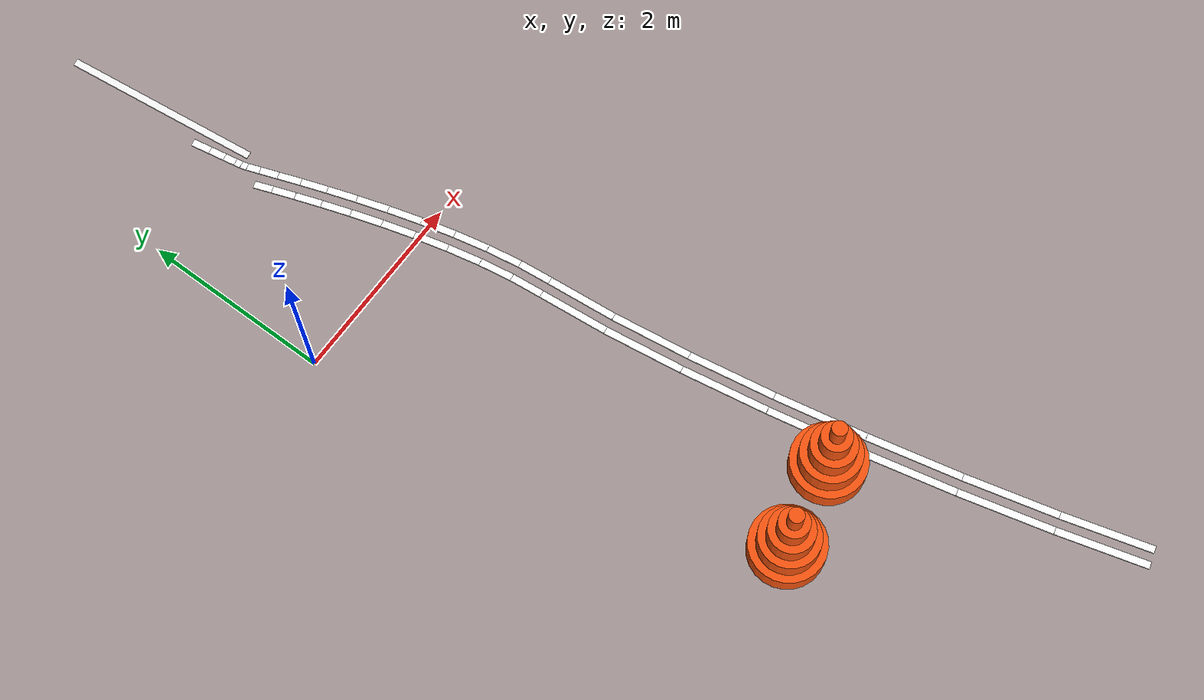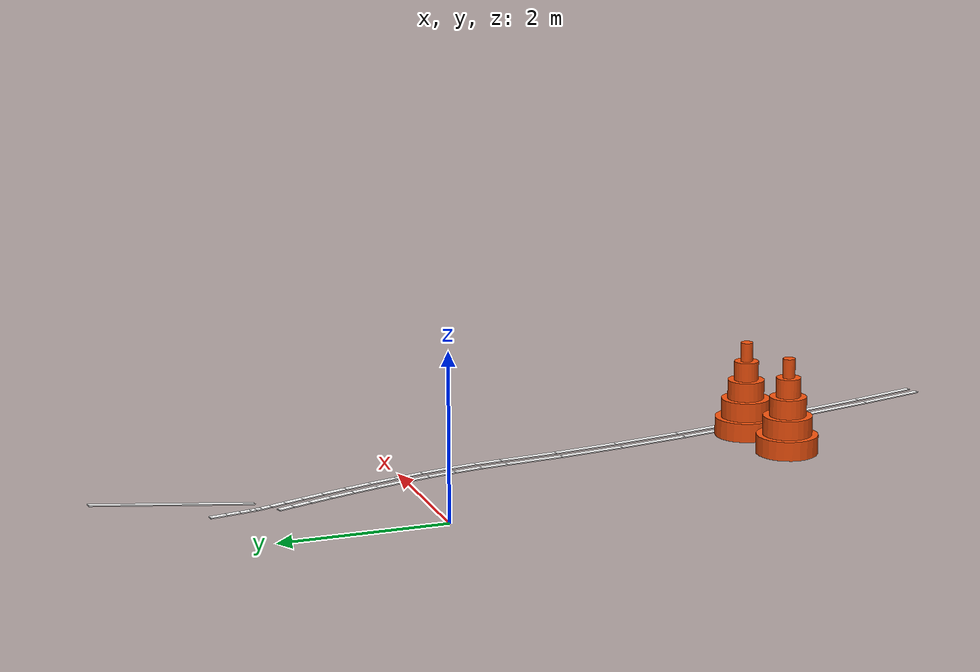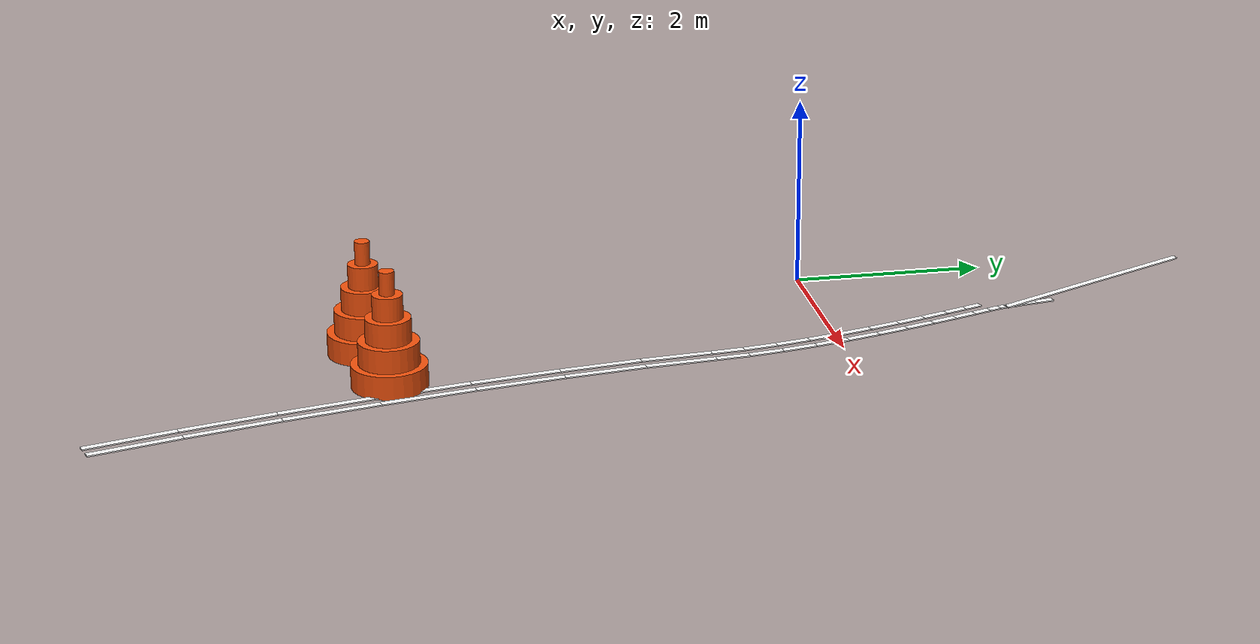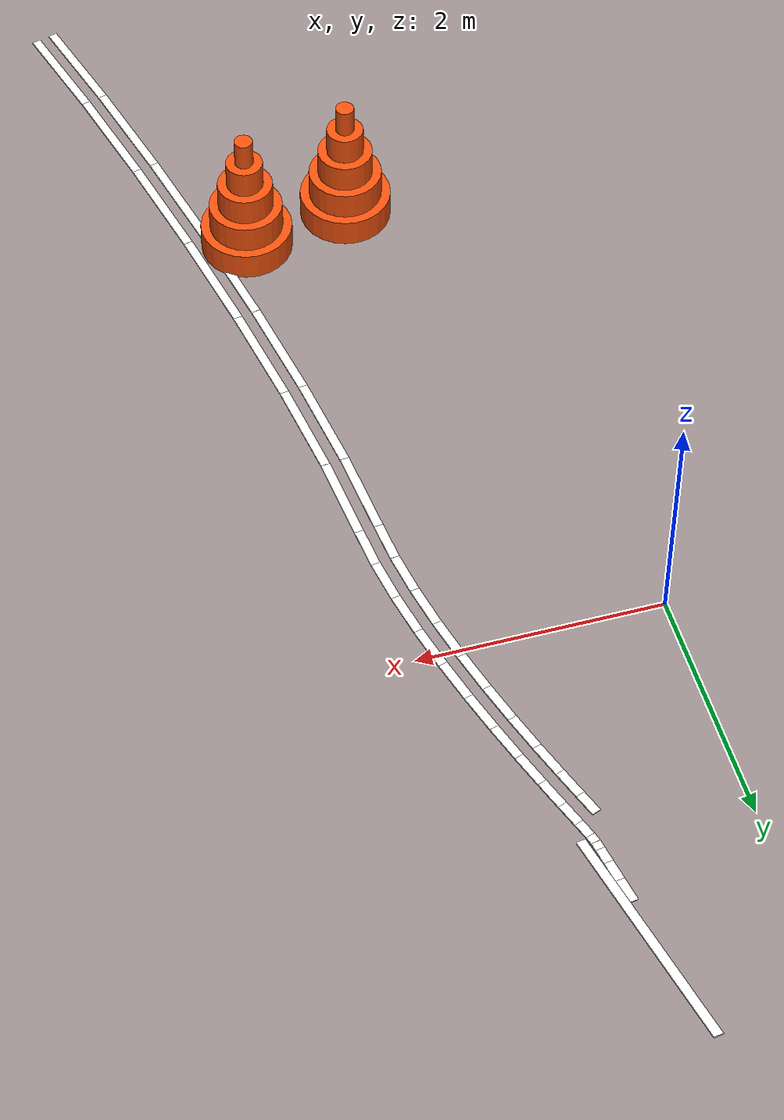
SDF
<sdf version="1.9">
 <world name="igvc_competition">
  <model name="Line_002_0234">
   <static>1</static>
   <pose>1.1269 2.3959 0.011 0 0 -1.392450</pose>
   <link name="link">
    <visual name="visual">
     <geometry><box><size>0.2018 0.0762 0.012</size></box></geometry>
     <material>
      <ambient>0.98 0.98 0.98 1</ambient>
      <diffuse>0.98 0.98 0.98 1</diffuse>
      <specular>0.05 0.05 0.05 1</specular>
      <emissive>0.9 0.9 0.9 1</emissive>
     </material>
    </visual>
   </link>
  </model>
  <model name="Line_002_0236">
   <static>1</static>
   <pose>1.1599 2.2132 0.011 0 0 -1.392262</pose>
   <link name="link">
    <visual name="visual">
     <geometry><box><size>0.1695 0.0762 0.012</size></box></geometry>
     <material>
      <ambient>0.98 0.98 0.98 1</ambient>
      <diffuse>0.98 0.98 0.98 1</diffuse>
      <specular>0.05 0.05 0.05 1</specular>
      <emissive>0.9 0.9 0.9 1</emissive>
     </material>
    </visual>
   </link>
  </model>
  <model name="Line_002_0238">
   <static>1</static>
   <pose>1.1861 2.0680 0.011 0 0 -1.391512</pose>
   <link name="link">
    <visual name="visual">
     <geometry><box><size>0.1256 0.0762 0.012</size></box></geometry>
     <material>
      <ambient>0.98 0.98 0.98 1</ambient>
      <diffuse>0.98 0.98 0.98 1</diffuse>
      <specular>0.05 0.05 0.05 1</specular>
      <emissive>0.9 0.9 0.9 1</emissive>
     </material>
    </visual>
   </link>
  </model>
  <model name="Line_002_0240">
   <static>1</static>
   <pose>1.2032 1.9736 0.011 0 0 -1.391753</pose>
   <link name="link">
    <visual name="visual">
     <geometry><box><size>0.0663 0.0762 0.012</size></box></geometry>
     <material>
      <ambient>0.98 0.98 0.98 1</ambient>
      <diffuse>0.98 0.98 0.98 1</diffuse>
      <specular>0.05 0.05 0.05 1</specular>
      <emissive>0.9 0.9 0.9 1</emissive>
     </material>
    </visual>
   </link>
  </model>
  <model name="Line_002_0242">
   <static>1</static>
   <pose>1.2188 1.9085 0.011 0 0 -1.280329</pose>
   <link name="link">
    <visual name="visual">
     <geometry><box><size>0.0677 0.0762 0.012</size></box></geometry>
     <material>
      <ambient>0.98 0.98 0.98 1</ambient>
      <diffuse>0.98 0.98 0.98 1</diffuse>
      <specular>0.05 0.05 0.05 1</specular>
      <emissive>0.9 0.9 0.9 1</emissive>
     </material>
    </visual>
   </link>
  </model>
  <model name="Line_002_0244">
   <static>1</static>
   <pose>1.2510 1.8119 0.011 0 0 -1.233012</pose>
   <link name="link">
    <visual name="visual">
     <geometry><box><size>0.1361 0.0762 0.012</size></box></geometry>
     <material>
      <ambient>0.98 0.98 0.98 1</ambient>
      <diffuse>0.98 0.98 0.98 1</diffuse>
      <specular>0.05 0.05 0.05 1</specular>
      <emissive>0.9 0.9 0.9 1</emissive>
     </material>
    </visual>
   </link>
  </model>
  <model name="Line_002_0246">
   <static>1</static>
   <pose>1.3065 1.6561 0.011 0 0 -1.225975</pose>
   <link name="link">
    <visual name="visual">
     <geometry><box><size>0.1947 0.0762 0.012</size></box></geometry>
     <material>
      <ambient>0.98 0.98 0.98 1</ambient>
      <diffuse>0.98 0.98 0.98 1</diffuse>
      <specular>0.05 0.05 0.05 1</specular>
      <emissive>0.9 0.9 0.9 1</emissive>
     </material>
    </visual>
   </link>
  </model>
  <model name="Line_002_0247">
   <static>1</static>
   <pose>1.1521 1.6031 0.011 0 0 -1.226322</pose>
   <link name="link">
    <visual name="visual">
     <geometry><box><size>0.1948 0.0762 0.012</size></box></geometry>
     <material>
      <ambient>0.98 0.98 0.98 1</ambient>
      <diffuse>0.98 0.98 0.98 1</diffuse>
      <specular>0.05 0.05 0.05 1</specular>
      <emissive>0.9 0.9 0.9 1</emissive>
     </material>
    </visual>
   </link>
  </model>
  <model name="Line_002_0248">
   <static>1</static>
   <pose>1.3800 1.4497 0.011 0 0 -1.230616</pose>
   <link name="link">
    <visual name="visual">
     <geometry><box><size>0.2437 0.0762 0.012</size></box></geometry>
     <material>
      <ambient>0.98 0.98 0.98 1</ambient>
      <diffuse>0.98 0.98 0.98 1</diffuse>
      <specular>0.05 0.05 0.05 1</specular>
      <emissive>0.9 0.9 0.9 1</emissive>
     </material>
    </visual>
   </link>
  </model>
  <model name="Line_002_0249">
   <static>1</static>
   <pose>1.2254 1.3971 0.011 0 0 -1.230657</pose>
   <link name="link">
    <visual name="visual">
     <geometry><box><size>0.2425 0.0762 0.012</size></box></geometry>
     <material>
      <ambient>0.98 0.98 0.98 1</ambient>
      <diffuse>0.98 0.98 0.98 1</diffuse>
      <specular>0.05 0.05 0.05 1</specular>
      <emissive>0.9 0.9 0.9 1</emissive>
     </material>
    </visual>
   </link>
  </model>
  <model name="Line_002_0250">
   <static>1</static>
   <pose>1.4667 1.2004 0.011 0 0 -1.241146</pose>
   <link name="link">
    <visual name="visual">
     <geometry><box><size>0.2842 0.0762 0.012</size></box></geometry>
     <material>
      <ambient>0.98 0.98 0.98 1</ambient>
      <diffuse>0.98 0.98 0.98 1</diffuse>
      <specular>0.05 0.05 0.05 1</specular>
      <emissive>0.9 0.9 0.9 1</emissive>
     </material>
    </visual>
   </link>
  </model>
  <model name="Line_002_0251">
   <static>1</static>
   <pose>1.3116 1.1493 0.011 0 0 -1.240643</pose>
   <link name="link">
    <visual name="visual">
     <geometry><box><size>0.2822 0.0762 0.012</size></box></geometry>
     <material>
      <ambient>0.98 0.98 0.98 1</ambient>
      <diffuse>0.98 0.98 0.98 1</diffuse>
      <specular>0.05 0.05 0.05 1</specular>
      <emissive>0.9 0.9 0.9 1</emissive>
     </material>
    </visual>
   </link>
  </model>
  <model name="Line_002_0252">
   <static>1</static>
   <pose>1.5617 0.9154 0.011 0 0 -1.256039</pose>
   <link name="link">
    <visual name="visual">
     <geometry><box><size>0.3166 0.0762 0.012</size></box></geometry>
     <material>
      <ambient>0.98 0.98 0.98 1</ambient>
      <diffuse>0.98 0.98 0.98 1</diffuse>
      <specular>0.05 0.05 0.05 1</specular>
      <emissive>0.9 0.9 0.9 1</emissive>
     </material>
    </visual>
   </link>
  </model>
  <model name="Line_002_0253">
   <static>1</static>
   <pose>1.4060 0.8665 0.011 0 0 -1.256095</pose>
   <link name="link">
    <visual name="visual">
     <geometry><box><size>0.3140 0.0762 0.012</size></box></geometry>
     <material>
      <ambient>0.98 0.98 0.98 1</ambient>
      <diffuse>0.98 0.98 0.98 1</diffuse>
      <specular>0.05 0.05 0.05 1</specular>
      <emissive>0.9 0.9 0.9 1</emissive>
     </material>
    </visual>
   </link>
  </model>
  <model name="Line_002_0254">
   <static>1</static>
   <pose>1.6604 0.6018 0.011 0 0 -1.275014</pose>
   <link name="link">
    <visual name="visual">
     <geometry><box><size>0.3410 0.0762 0.012</size></box></geometry>
     <material>
      <ambient>0.98 0.98 0.98 1</ambient>
      <diffuse>0.98 0.98 0.98 1</diffuse>
      <specular>0.05 0.05 0.05 1</specular>
      <emissive>0.9 0.9 0.9 1</emissive>
     </material>
    </visual>
   </link>
  </model>
  <model name="Line_002_0255">
   <static>1</static>
   <pose>1.5038 0.5557 0.011 0 0 -1.275084</pose>
   <link name="link">
    <visual name="visual">
     <geometry><box><size>0.3377 0.0762 0.012</size></box></geometry>
     <material>
      <ambient>0.98 0.98 0.98 1</ambient>
      <diffuse>0.98 0.98 0.98 1</diffuse>
      <specular>0.05 0.05 0.05 1</specular>
      <emissive>0.9 0.9 0.9 1</emissive>
     </material>
    </visual>
   </link>
  </model>
  <model name="Line_002_0256">
   <static>1</static>
   <pose>1.7580 0.2664 0.011 0 0 -1.299296</pose>
   <link name="link">
    <visual name="visual">
     <geometry><box><size>0.3576 0.0762 0.012</size></box></geometry>
     <material>
      <ambient>0.98 0.98 0.98 1</ambient>
      <diffuse>0.98 0.98 0.98 1</diffuse>
      <specular>0.05 0.05 0.05 1</specular>
      <emissive>0.9 0.9 0.9 1</emissive>
     </material>
    </visual>
   </link>
  </model>
  <model name="Line_002_0257">
   <static>1</static>
   <pose>1.6004 0.2239 0.011 0 0 -1.299259</pose>
   <link name="link">
    <visual name="visual">
     <geometry><box><size>0.3535 0.0762 0.012</size></box></geometry>
     <material>
      <ambient>0.98 0.98 0.98 1</ambient>
      <diffuse>0.98 0.98 0.98 1</diffuse>
      <specular>0.05 0.05 0.05 1</specular>
      <emissive>0.9 0.9 0.9 1</emissive>
     </material>
    </visual>
   </link>
  </model>
  <model name="Line_002_0258">
   <static>1</static>
   <pose>1.8498 -0.0837 0.011 0 0 -1.329127</pose>
   <link name="link">
    <visual name="visual">
     <geometry><box><size>0.3664 0.0762 0.012</size></box></geometry>
     <material>
      <ambient>0.98 0.98 0.98 1</ambient>
      <diffuse>0.98 0.98 0.98 1</diffuse>
      <specular>0.05 0.05 0.05 1</specular>
      <emissive>0.9 0.9 0.9 1</emissive>
     </material>
    </visual>
   </link>
  </model>
  <model name="Line_002_0259">
   <static>1</static>
   <pose>1.6910 -0.1218 0.011 0 0 -1.329106</pose>
   <link name="link">
    <visual name="visual">
     <geometry><box><size>0.3614 0.0762 0.012</size></box></geometry>
     <material>
      <ambient>0.98 0.98 0.98 1</ambient>
      <diffuse>0.98 0.98 0.98 1</diffuse>
      <specular>0.05 0.05 0.05 1</specular>
      <emissive>0.9 0.9 0.9 1</emissive>
     </material>
    </visual>
   </link>
  </model>
  <model name="Line_002_0260">
   <static>1</static>
   <pose>1.9311 -0.4418 0.011 0 0 -1.365889</pose>
   <link name="link">
    <visual name="visual">
     <geometry><box><size>0.3681 0.0762 0.012</size></box></geometry>
     <material>
      <ambient>0.98 0.98 0.98 1</ambient>
      <diffuse>0.98 0.98 0.98 1</diffuse>
      <specular>0.05 0.05 0.05 1</specular>
      <emissive>0.9 0.9 0.9 1</emissive>
     </material>
    </visual>
   </link>
  </model>
  <model name="Line_002_0261">
   <static>1</static>
   <pose>1.7711 -0.4743 0.011 0 0 -1.365863</pose>
   <link name="link">
    <visual name="visual">
     <geometry><box><size>0.3617 0.0762 0.012</size></box></geometry>
     <material>
      <ambient>0.98 0.98 0.98 1</ambient>
      <diffuse>0.98 0.98 0.98 1</diffuse>
      <specular>0.05 0.05 0.05 1</specular>
      <emissive>0.9 0.9 0.9 1</emissive>
     </material>
    </visual>
   </link>
  </model>
  <model name="Line_002_0262">
   <static>1</static>
   <pose>1.9972 -0.8010 0.011 0 0 -1.412087</pose>
   <link name="link">
    <visual name="visual">
     <geometry><box><size>0.3626 0.0762 0.012</size></box></geometry>
     <material>
      <ambient>0.98 0.98 0.98 1</ambient>
      <diffuse>0.98 0.98 0.98 1</diffuse>
      <specular>0.05 0.05 0.05 1</specular>
      <emissive>0.9 0.9 0.9 1</emissive>
     </material>
    </visual>
   </link>
  </model>
  <model name="Line_002_0263">
   <static>1</static>
   <pose>1.8359 -0.8264 0.011 0 0 -1.411907</pose>
   <link name="link">
    <visual name="visual">
     <geometry><box><size>0.3546 0.0762 0.012</size></box></geometry>
     <material>
      <ambient>0.98 0.98 0.98 1</ambient>
      <diffuse>0.98 0.98 0.98 1</diffuse>
      <specular>0.05 0.05 0.05 1</specular>
      <emissive>0.9 0.9 0.9 1</emissive>
     </material>
    </visual>
   </link>
  </model>
  <model name="Line_002_0264">
   <static>1</static>
   <pose>2.0433 -1.1532 0.011 0 0 -1.470956</pose>
   <link name="link">
    <visual name="visual">
     <geometry><box><size>0.3481 0.0762 0.012</size></box></geometry>
     <material>
      <ambient>0.98 0.98 0.98 1</ambient>
      <diffuse>0.98 0.98 0.98 1</diffuse>
      <specular>0.05 0.05 0.05 1</specular>
      <emissive>0.9 0.9 0.9 1</emissive>
     </material>
    </visual>
   </link>
  </model>
  <model name="Line_002_0265">
   <static>1</static>
   <pose>1.8811 -1.1721 0.011 0 0 -1.471244</pose>
   <link name="link">
    <visual name="visual">
     <geometry><box><size>0.3431 0.0762 0.012</size></box></geometry>
     <material>
      <ambient>0.98 0.98 0.98 1</ambient>
      <diffuse>0.98 0.98 0.98 1</diffuse>
      <specular>0.05 0.05 0.05 1</specular>
      <emissive>0.9 0.9 0.9 1</emissive>
     </material>
    </visual>
   </link>
  </model>
  <model name="Line_002_0266">
   <static>1</static>
   <pose>2.0947 -1.6927 0.011 0 0 -1.477848</pose>
   <link name="link">
    <visual name="visual">
     <geometry><box><size>0.7359 0.0762 0.012</size></box></geometry>
     <material>
      <ambient>0.98 0.98 0.98 1</ambient>
      <diffuse>0.98 0.98 0.98 1</diffuse>
      <specular>0.05 0.05 0.05 1</specular>
      <emissive>0.9 0.9 0.9 1</emissive>
     </material>
    </visual>
   </link>
  </model>
  <model name="Line_002_0267">
   <static>1</static>
   <pose>1.9324 -1.7106 0.011 0 0 -1.477795</pose>
   <link name="link">
    <visual name="visual">
     <geometry><box><size>0.7387 0.0762 0.012</size></box></geometry>
     <material>
      <ambient>0.98 0.98 0.98 1</ambient>
      <diffuse>0.98 0.98 0.98 1</diffuse>
      <specular>0.05 0.05 0.05 1</specular>
      <emissive>0.9 0.9 0.9 1</emissive>
     </material>
    </visual>
   </link>
  </model>
  <model name="Line_002_0268">
   <static>1</static>
   <pose>2.1860 -2.4758 0.011 0 0 -1.434733</pose>
   <link name="link">
    <visual name="visual">
     <geometry><box><size>0.8412 0.0762 0.012</size></box></geometry>
     <material>
      <ambient>0.98 0.98 0.98 1</ambient>
      <diffuse>0.98 0.98 0.98 1</diffuse>
      <specular>0.05 0.05 0.05 1</specular>
      <emissive>0.9 0.9 0.9 1</emissive>
     </material>
    </visual>
   </link>
  </model>
  <model name="Line_002_0269">
   <static>1</static>
   <pose>2.0241 -2.4978 0.011 0 0 -1.434811</pose>
   <link name="link">
    <visual name="visual">
     <geometry><box><size>0.8468 0.0762 0.012</size></box></geometry>
     <material>
      <ambient>0.98 0.98 0.98 1</ambient>
      <diffuse>0.98 0.98 0.98 1</diffuse>
      <specular>0.05 0.05 0.05 1</specular>
      <emissive>0.9 0.9 0.9 1</emissive>
     </material>
    </visual>
   </link>
  </model>
  <model name="Line_002_0270">
   <static>1</static>
   <pose>2.3198 -3.3457 0.011 0 0 -1.402822</pose>
   <link name="link">
    <visual name="visual">
     <geometry><box><size>0.9193 0.0762 0.012</size></box></geometry>
     <material>
      <ambient>0.98 0.98 0.98 1</ambient>
      <diffuse>0.98 0.98 0.98 1</diffuse>
      <specular>0.05 0.05 0.05 1</specular>
      <emissive>0.9 0.9 0.9 1</emissive>
     </material>
    </visual>
   </link>
  </model>
  <model name="Line_002_0271">
   <static>1</static>
   <pose>2.1588 -3.3727 0.011 0 0 -1.402783</pose>
   <link name="link">
    <visual name="visual">
     <geometry><box><size>0.9239 0.0762 0.012</size></box></geometry>
     <material>
      <ambient>0.98 0.98 0.98 1</ambient>
      <diffuse>0.98 0.98 0.98 1</diffuse>
      <specular>0.05 0.05 0.05 1</specular>
      <emissive>0.9 0.9 0.9 1</emissive>
     </material>
    </visual>
   </link>
  </model>
  <model name="Line_002_0272">
   <static>1</static>
   <pose>2.4901 -4.2736 0.011 0 0 -1.376441</pose>
   <link name="link">
    <visual name="visual">
     <geometry><box><size>0.9677 0.0762 0.012</size></box></geometry>
     <material>
      <ambient>0.98 0.98 0.98 1</ambient>
      <diffuse>0.98 0.98 0.98 1</diffuse>
      <specular>0.05 0.05 0.05 1</specular>
      <emissive>0.9 0.9 0.9 1</emissive>
     </material>
    </visual>
   </link>
  </model>
  <model name="Line_002_0273">
   <static>1</static>
   <pose>2.3299 -4.3049 0.011 0 0 -1.376388</pose>
   <link name="link">
    <visual name="visual">
     <geometry><box><size>0.9716 0.0762 0.012</size></box></geometry>
     <material>
      <ambient>0.98 0.98 0.98 1</ambient>
      <diffuse>0.98 0.98 0.98 1</diffuse>
      <specular>0.05 0.05 0.05 1</specular>
      <emissive>0.9 0.9 0.9 1</emissive>
     </material>
    </visual>
   </link>
  </model>
  <model name="Line_002_0274">
   <static>1</static>
   <pose>2.6905 -5.2297 0.011 0 0 -1.352336</pose>
   <link name="link">
    <visual name="visual">
     <geometry><box><size>0.9860 0.0762 0.012</size></box></geometry>
     <material>
      <ambient>0.98 0.98 0.98 1</ambient>
      <diffuse>0.98 0.98 0.98 1</diffuse>
      <specular>0.05 0.05 0.05 1</specular>
      <emissive>0.9 0.9 0.9 1</emissive>
     </material>
    </visual>
   </link>
  </model>
  <model name="Line_002_0275">
   <static>1</static>
   <pose>2.5309 -5.2646 0.011 0 0 -1.352434</pose>
   <link name="link">
    <visual name="visual">
     <geometry><box><size>0.9897 0.0762 0.012</size></box></geometry>
     <material>
      <ambient>0.98 0.98 0.98 1</ambient>
      <diffuse>0.98 0.98 0.98 1</diffuse>
      <specular>0.05 0.05 0.05 1</specular>
      <emissive>0.9 0.9 0.9 1</emissive>
     </material>
    </visual>
   </link>
  </model>
  <model name="Line_002_0276">
   <static>1</static>
   <pose>2.9143 -6.1840 0.011 0 0 -1.328381</pose>
   <link name="link">
    <visual name="visual">
     <geometry><box><size>0.9744 0.0762 0.012</size></box></geometry>
     <material>
      <ambient>0.98 0.98 0.98 1</ambient>
      <diffuse>0.98 0.98 0.98 1</diffuse>
      <specular>0.05 0.05 0.05 1</specular>
      <emissive>0.9 0.9 0.9 1</emissive>
     </material>
    </visual>
   </link>
  </model>
  <model name="Line_002_0277">
   <static>1</static>
   <pose>2.7555 -6.2225 0.011 0 0 -1.328372</pose>
   <link name="link">
    <visual name="visual">
     <geometry><box><size>0.9781 0.0762 0.012</size></box></geometry>
     <material>
      <ambient>0.98 0.98 0.98 1</ambient>
      <diffuse>0.98 0.98 0.98 1</diffuse>
      <specular>0.05 0.05 0.05 1</specular>
      <emissive>0.9 0.9 0.9 1</emissive>
     </material>
    </visual>
   </link>
  </model>
  <model name="Line_002_0278">
   <static>1</static>
   <pose>3.1551 -7.1065 0.011 0 0 -1.301967</pose>
   <link name="link">
    <visual name="visual">
     <geometry><box><size>0.9326 0.0762 0.012</size></box></geometry>
     <material>
      <ambient>0.98 0.98 0.98 1</ambient>
      <diffuse>0.98 0.98 0.98 1</diffuse>
      <specular>0.05 0.05 0.05 1</specular>
      <emissive>0.9 0.9 0.9 1</emissive>
     </material>
    </visual>
   </link>
  </model>
  <model name="Line_002_0279">
   <static>1</static>
   <pose>2.9973 -7.1489 0.011 0 0 -1.301980</pose>
   <link name="link">
    <visual name="visual">
     <geometry><box><size>0.9372 0.0762 0.012</size></box></geometry>
     <material>
      <ambient>0.98 0.98 0.98 1</ambient>
      <diffuse>0.98 0.98 0.98 1</diffuse>
      <specular>0.05 0.05 0.05 1</specular>
      <emissive>0.9 0.9 0.9 1</emissive>
     </material>
    </visual>
   </link>
  </model>
  <model name="Cones_021">
   <static>1</static>
   <pose>2.1071 -4.6098 0 0 0 0</pose>
   <link name="link">
    <collision name="collision">
     <pose>0 0 0.5985 0 0 0</pose>
     <geometry><cylinder><radius>0.3831</radius><length>1.1969</length></cylinder></geometry>
    </collision>
    <visual name="visual_0">
     <pose>0 0 0.1197 0 0 0</pose>
     <geometry><cylinder><radius>0.3831</radius><length>0.2394</length></cylinder></geometry>
     <material>
      <ambient>0.95 0.32 0.05 1.0</ambient>
      <diffuse>0.95 0.32 0.05 1.0</diffuse>
      <specular>0.05 0.05 0.05 1</specular>
     </material>
    </visual>
    <visual name="visual_1">
     <pose>0 0 0.3591 0 0 0</pose>
     <geometry><cylinder><radius>0.3065</radius><length>0.2394</length></cylinder></geometry>
     <material>
      <ambient>0.95 0.32 0.05 1.0</ambient>
      <diffuse>0.95 0.32 0.05 1.0</diffuse>
      <specular>0.05 0.05 0.05 1</specular>
     </material>
    </visual>
    <visual name="visual_2">
     <pose>0 0 0.5985 0 0 0</pose>
     <geometry><cylinder><radius>0.2299</radius><length>0.2394</length></cylinder></geometry>
     <material>
      <ambient>0.95 0.32 0.05 1.0</ambient>
      <diffuse>0.95 0.32 0.05 1.0</diffuse>
      <specular>0.05 0.05 0.05 1</specular>
     </material>
    </visual>
    <visual name="visual_3">
     <pose>0 0 0.8378 0 0 0</pose>
     <geometry><cylinder><radius>0.1532</radius><length>0.2394</length></cylinder></geometry>
     <material>
      <ambient>0.95 0.32 0.05 1.0</ambient>
      <diffuse>0.95 0.32 0.05 1.0</diffuse>
      <specular>0.05 0.05 0.05 1</specular>
     </material>
    </visual>
    <visual name="visual_4">
     <pose>0 0 1.0772 0 0 0</pose>
     <geometry><cylinder><radius>0.0766</radius><length>0.2394</length></cylinder></geometry>
     <material>
      <ambient>0.95 0.32 0.05 1.0</ambient>
      <diffuse>0.95 0.32 0.05 1.0</diffuse>
      <specular>0.05 0.05 0.05 1</specular>
     </material>
    </visual>
   </link>
  </model>
  <model name="Cones_022">
   <static>1</static>
   <pose>1.2056 -4.7598 0 0 0 0</pose>
   <link name="link">
    <collision name="collision">
     <pose>0 0 0.5985 0 0 0</pose>
     <geometry><cylinder><radius>0.3831</radius><length>1.1969</length></cylinder></geometry>
    </collision>
    <visual name="visual_0">
     <pose>0 0 0.1197 0 0 0</pose>
     <geometry><cylinder><radius>0.3831</radius><length>0.2394</length></cylinder></geometry>
     <material>
      <ambient>0.95 0.32 0.05 1.0</ambient>
      <diffuse>0.95 0.32 0.05 1.0</diffuse>
      <specular>0.05 0.05 0.05 1</specular>
     </material>
    </visual>
    <visual name="visual_1">
     <pose>0 0 0.3591 0 0 0</pose>
     <geometry><cylinder><radius>0.3065</radius><length>0.2394</length></cylinder></geometry>
     <material>
      <ambient>0.95 0.32 0.05 1.0</ambient>
      <diffuse>0.95 0.32 0.05 1.0</diffuse>
      <specular>0.05 0.05 0.05 1</specular>
     </material>
    </visual>
    <visual name="visual_2">
     <pose>0 0 0.5985 0 0 0</pose>
     <geometry><cylinder><radius>0.2299</radius><length>0.2394</length></cylinder></geometry>
     <material>
      <ambient>0.95 0.32 0.05 1.0</ambient>
      <diffuse>0.95 0.32 0.05 1.0</diffuse>
      <specular>0.05 0.05 0.05 1</specular>
     </material>
    </visual>
    <visual name="visual_3">
     <pose>0 0 0.8378 0 0 0</pose>
     <geometry><cylinder><radius>0.1532</radius><length>0.2394</length></cylinder></geometry>
     <material>
      <ambient>0.95 0.32 0.05 1.0</ambient>
      <diffuse>0.95 0.32 0.05 1.0</diffuse>
      <specular>0.05 0.05 0.05 1</specular>
     </material>
    </visual>
    <visual name="visual_4">
     <pose>0 0 1.0772 0 0 0</pose>
     <geometry><cylinder><radius>0.0766</radius><length>0.2394</length></cylinder></geometry>
     <material>
      <ambient>0.95 0.32 0.05 1.0</ambient>
      <diffuse>0.95 0.32 0.05 1.0</diffuse>
      <specular>0.05 0.05 0.05 1</specular>
     </material>
    </visual>
   </link>
  </model>
  <model name="Ramp_up_right_white_line">
   <static>1</static>
   <pose>1.1588 2.9045 0.2005 0.000000 -0.148923 1.735700</pose>
   <link name="link">
    <visual name="visual">
     <geometry><box><size>2.0017 0.0762 0.012</size></box></geometry>
     <material>
      <ambient>0.98 0.98 0.98 1</ambient>
      <diffuse>0.98 0.98 0.98 1</diffuse>
      <specular>0.05 0.05 0.05 1</specular>
      <emissive>0.9 0.9 0.9 1</emissive>
     </material>
    </visual>
   </link>
  </model>
 </world>
</sdf>
